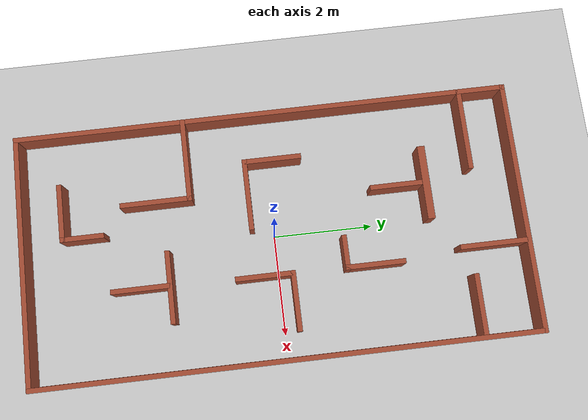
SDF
<sdf version="1.7">
 <world name="default">
  <light name="sun" type="directional">
   <pose>0 0 10 0 -0 0</pose>
   <diffuse>0.8 0.8 0.8 1</diffuse>
   <specular>0.2 0.2 0.2 1</specular>
   <attenuation>
    <range>1000</range>
    <constant>0.9</constant>
    <linear>0.01</linear>
    <quadratic>0.001</quadratic>
   </attenuation>
   <direction>-0.5 0.1 -0.9</direction>
   <spot><inner_angle>0</inner_angle><outer_angle>0</outer_angle><falloff>0</falloff></spot>
  </light>
  <model name="ground_plane">
   <static>1</static>
   <link name="link">
    <collision name="collision">
     <geometry><plane><normal>0 0 1</normal><size>100 100</size></plane></geometry>
     <surface>
      <contact><collide_bitmask>65535</collide_bitmask></contact>
      <friction><ode><mu>100</mu><mu2>50</mu2></ode></friction>
     </surface>
    </collision>
    <visual name="visual">
     <cast_shadows>0</cast_shadows>
     <geometry><plane><normal>0 0 1</normal><size>100 100</size></plane></geometry>
     <material>
      <script><uri>file://media/materials/scripts/gazebo.material</uri><name>Gazebo/Grey</name></script>
     </material>
    </visual>
   </link>
  </model>
  <gravity>0 0 -9.8</gravity>
  <magnetic_field>6e-06 2.3e-05 -4.2e-05</magnetic_field>
  <atmosphere type="adiabatic"/>
  <physics type="ode">
   <max_step_size>0.001</max_step_size>
   <real_time_factor>1</real_time_factor>
   <real_time_update_rate>1000</real_time_update_rate>
  </physics>
  <scene><ambient>0.4 0.4 0.4 1</ambient><background>0.7 0.7 0.7 1</background><shadows>1</shadows></scene>
  <spherical_coordinates>
   <surface_model>EARTH_WGS84</surface_model>
   <latitude_deg>0</latitude_deg>
   <longitude_deg>0</longitude_deg>
   <elevation>0</elevation>
   <heading_deg>0</heading_deg>
  </spherical_coordinates>
  <model name="tb3_multi_map_2">
   <link name="Wall_0">
    <collision name="Wall_0_Collision">
     <geometry><box><size>10.1 0.1 0.5</size></box></geometry>
     <pose>0 0 0.25 0 -0 0</pose>
    </collision>
    <visual name="Wall_0_Visual">
     <pose>0 0 0.25 0 -0 0</pose>
     <geometry><box><size>10.1 0.1 0.5</size></box></geometry>
     <material>
      <script><uri>file://media/materials/scripts/gazebo.material</uri><name>Gazebo/Bricks</name></script>
      <ambient>1 1 1 1</ambient>
     </material>
     <meta><layer>0</layer></meta>
    </visual>
    <pose>-2.49953 0 0 0 -0 -1.5708</pose>
   </link>
   <link name="Wall_1">
    <collision name="Wall_1_Collision">
     <geometry><box><size>5.1 0.1 0.5</size></box></geometry>
     <pose>0 0 0.25 0 -0 0</pose>
    </collision>
    <visual name="Wall_1_Visual">
     <pose>0 0 0.25 0 -0 0</pose>
     <geometry><box><size>5.1 0.1 0.5</size></box></geometry>
     <material>
      <script><uri>file://media/materials/scripts/gazebo.material</uri><name>Gazebo/Bricks</name></script>
      <ambient>1 1 1 1</ambient>
     </material>
     <meta><layer>0</layer></meta>
    </visual>
    <pose>0.000474 -5 0 0 -0 0</pose>
   </link>
   <link name="Wall_11">
    <collision name="Wall_11_Collision">
     <geometry><box><size>1.43 0.1 0.5</size></box></geometry>
     <pose>0 0 0.25 0 -0 0</pose>
    </collision>
    <visual name="Wall_11_Visual">
     <pose>0 0 0.25 0 -0 0</pose>
     <geometry><box><size>1.43 0.1 0.5</size></box></geometry>
     <material>
      <script><uri>file://media/materials/scripts/gazebo.material</uri><name>Gazebo/Bricks</name></script>
      <ambient>1 1 1 1</ambient>
     </material>
     <meta><layer>0</layer></meta>
    </visual>
    <pose>0.700474 4.335 0 0 -0 -1.5708</pose>
   </link>
   <link name="Wall_13">
    <collision name="Wall_13_Collision">
     <geometry><box><size>1.3 0.1 0.5</size></box></geometry>
     <pose>0 0 0.25 0 -0 0</pose>
    </collision>
    <visual name="Wall_13_Visual">
     <pose>0 0 0.25 0 -0 0</pose>
     <geometry><box><size>1.3 0.1 0.5</size></box></geometry>
     <material>
      <script><uri>file://media/materials/scripts/gazebo.material</uri><name>Gazebo/Bricks</name></script>
      <ambient>1 1 1 1</ambient>
     </material>
     <meta><layer>0</layer></meta>
    </visual>
    <pose>1.90047 3.848 0 0 -0 0</pose>
   </link>
   <link name="Wall_15">
    <collision name="Wall_15_Collision">
     <geometry><box><size>1.19995 0.1 0.5</size></box></geometry>
     <pose>0 0 0.25 0 -0 0</pose>
    </collision>
    <visual name="Wall_15_Visual">
     <pose>0 0 0.25 0 -0 0</pose>
     <geometry><box><size>1.19995 0.1 0.5</size></box></geometry>
     <material>
      <script><uri>file://media/materials/scripts/gazebo.material</uri><name>Gazebo/Bricks</name></script>
      <ambient>1 1 1 1</ambient>
     </material>
     <meta><layer>0</layer></meta>
    </visual>
    <pose>0.842474 1.916 0 0 -0 -1.5708</pose>
   </link>
   <link name="Wall_16">
    <collision name="Wall_16_Collision">
     <geometry><box><size>0.700041 0.1 0.5</size></box></geometry>
     <pose>0 0 0.25 0 -0 0</pose>
    </collision>
    <visual name="Wall_16_Visual">
     <pose>0 0 0.25 0 -0 0</pose>
     <geometry><box><size>0.700041 0.1 0.5</size></box></geometry>
     <material>
      <script><uri>file://media/materials/scripts/gazebo.material</uri><name>Gazebo/Bricks</name></script>
      <ambient>1 1 1 1</ambient>
     </material>
     <meta><layer>0</layer></meta>
    </visual>
    <pose>0.542474 1.366 0 0 -0 3.14159</pose>
   </link>
   <link name="Wall_18">
    <collision name="Wall_18_Collision">
     <geometry><box><size>1.20043 0.1 0.5</size></box></geometry>
     <pose>0 0 0.25 0 -0 0</pose>
    </collision>
    <visual name="Wall_18_Visual">
     <pose>0 0 0.25 0 -0 0</pose>
     <geometry><box><size>1.20043 0.1 0.5</size></box></geometry>
     <material>
      <script><uri>file://media/materials/scripts/gazebo.material</uri><name>Gazebo/Bricks</name></script>
      <ambient>1 1 1 1</ambient>
     </material>
     <meta><layer>0</layer></meta>
    </visual>
    <pose>-1.51853 0.115 0 0 -0 -1.5708</pose>
   </link>
   <link name="Wall_19">
    <collision name="Wall_19_Collision">
     <geometry><box><size>1.4498 0.1 0.5</size></box></geometry>
     <pose>0 0 0.25 0 -0 0</pose>
    </collision>
    <visual name="Wall_19_Visual">
     <pose>0 0 0.25 0 -0 0</pose>
     <geometry><box><size>1.4498 0.1 0.5</size></box></geometry>
     <material>
      <script><uri>file://media/materials/scripts/gazebo.material</uri><name>Gazebo/Bricks</name></script>
      <ambient>1 1 1 1</ambient>
     </material>
     <meta><layer>0</layer></meta>
    </visual>
    <pose>-0.843526 -0.435 0 0 -0 0</pose>
   </link>
   <link name="Wall_2">
    <collision name="Wall_2_Collision">
     <geometry><box><size>10.1 0.1 0.5</size></box></geometry>
     <pose>0 0 0.25 0 -0 0</pose>
    </collision>
    <visual name="Wall_2_Visual">
     <pose>0 0 0.25 0 -0 0</pose>
     <geometry><box><size>10.1 0.1 0.5</size></box></geometry>
     <material>
      <script><uri>file://media/materials/scripts/gazebo.material</uri><name>Gazebo/Bricks</name></script>
      <ambient>1 1 1 1</ambient>
     </material>
     <meta><layer>0</layer></meta>
    </visual>
    <pose>2.50047 0 0 0 -0 1.5708</pose>
   </link>
   <link name="Wall_25">
    <collision name="Wall_25_Collision">
     <geometry><box><size>1.19966 0.1 0.5</size></box></geometry>
     <pose>0 0 0.25 0 -0 0</pose>
    </collision>
    <visual name="Wall_25_Visual">
     <pose>0 0 0.25 0 -0 0</pose>
     <geometry><box><size>1.19966 0.1 0.5</size></box></geometry>
     <material>
      <script><uri>file://media/materials/scripts/gazebo.material</uri><name>Gazebo/Bricks</name></script>
      <ambient>1 1 1 1</ambient>
     </material>
     <meta><layer>0</layer></meta>
    </visual>
    <pose>1.37647 0.28 0 0 -0 3.14159</pose>
   </link>
   <link name="Wall_26">
    <collision name="Wall_26_Collision">
     <geometry><box><size>1.20021 0.1 0.5</size></box></geometry>
     <pose>0 0 0.25 0 -0 0</pose>
    </collision>
    <visual name="Wall_26_Visual">
     <pose>0 0 0.25 0 -0 0</pose>
     <geometry><box><size>1.20021 0.1 0.5</size></box></geometry>
     <material>
      <script><uri>file://media/materials/scripts/gazebo.material</uri><name>Gazebo/Bricks</name></script>
      <ambient>1 1 1 1</ambient>
     </material>
     <meta><layer>0</layer></meta>
    </visual>
    <pose>0.826474 -0.27 0 0 -0 -1.5708</pose>
   </link>
   <link name="Wall_3">
    <collision name="Wall_3_Collision">
     <geometry><box><size>5.1 0.1 0.5</size></box></geometry>
     <pose>0 0 0.25 0 -0 0</pose>
    </collision>
    <visual name="Wall_3_Visual">
     <pose>0 0 0.25 0 -0 0</pose>
     <geometry><box><size>5.1 0.1 0.5</size></box></geometry>
     <material>
      <script><uri>file://media/materials/scripts/gazebo.material</uri><name>Gazebo/Bricks</name></script>
      <ambient>1 1 1 1</ambient>
     </material>
     <meta><layer>0</layer></meta>
    </visual>
    <pose>0.000474 5 0 0 -0 3.14159</pose>
   </link>
   <link name="Wall_34">
    <collision name="Wall_34_Collision">
     <geometry><box><size>1.6999 0.1 0.5</size></box></geometry>
     <pose>0 0 0.25 0 -0 0</pose>
    </collision>
    <visual name="Wall_34_Visual">
     <pose>0 0 0.25 0 -0 0</pose>
     <geometry><box><size>1.6999 0.1 0.5</size></box></geometry>
     <material>
      <script><uri>file://media/materials/scripts/gazebo.material</uri><name>Gazebo/Bricks</name></script>
      <ambient>1 1 1 1</ambient>
     </material>
     <meta><layer>0</layer></meta>
    </visual>
    <pose>-1.70053 -1.604 0 0 -0 0</pose>
   </link>
   <link name="Wall_35">
    <collision name="Wall_35_Collision">
     <geometry><box><size>1.44962 0.1 0.5</size></box></geometry>
     <pose>0 0 0.25 0 -0 0</pose>
    </collision>
    <visual name="Wall_35_Visual">
     <pose>0 0 0.25 0 -0 0</pose>
     <geometry><box><size>1.44962 0.1 0.5</size></box></geometry>
     <material>
      <script><uri>file://media/materials/scripts/gazebo.material</uri><name>Gazebo/Bricks</name></script>
      <ambient>1 1 1 1</ambient>
     </material>
     <meta><layer>0</layer></meta>
    </visual>
    <pose>-0.900526 -2.279 0 0 -0 -1.5708</pose>
   </link>
   <link name="Wall_37">
    <collision name="Wall_37_Collision">
     <geometry><box><size>1.44989 0.1 0.5</size></box></geometry>
     <pose>0 0 0.25 0 -0 0</pose>
    </collision>
    <visual name="Wall_37_Visual">
     <pose>0 0 0.25 0 -0 0</pose>
     <geometry><box><size>1.44989 0.1 0.5</size></box></geometry>
     <material>
      <script><uri>file://media/materials/scripts/gazebo.material</uri><name>Gazebo/Bricks</name></script>
      <ambient>1 1 1 1</ambient>
     </material>
     <meta><layer>0</layer></meta>
    </visual>
    <pose>0.829474 -2.147 0 0 -0 0</pose>
   </link>
   <link name="Wall_39">
    <collision name="Wall_39_Collision">
     <geometry><box><size>1.1998 0.1 0.5</size></box></geometry>
     <pose>0 0 0.25 0 -0 0</pose>
    </collision>
    <visual name="Wall_39_Visual">
     <pose>0 0 0.25 0 -0 0</pose>
     <geometry><box><size>1.1998 0.1 0.5</size></box></geometry>
     <material>
      <script><uri>file://media/materials/scripts/gazebo.material</uri><name>Gazebo/Bricks</name></script>
      <ambient>1 1 1 1</ambient>
     </material>
     <meta><layer>0</layer></meta>
    </visual>
    <pose>0.798474 -2.717 0 0 -0 -1.5708</pose>
   </link>
   <link name="Wall_41">
    <collision name="Wall_41_Collision">
     <geometry><box><size>1.177 0.1 0.5</size></box></geometry>
     <pose>0 0 0.25 0 -0 0</pose>
    </collision>
    <visual name="Wall_41_Visual">
     <pose>0 0 0.25 0 -0 0</pose>
     <geometry><box><size>1.177 0.1 0.5</size></box></geometry>
     <material>
      <script><uri>file://media/materials/scripts/gazebo.material</uri><name>Gazebo/Bricks</name></script>
      <ambient>1 1 1 1</ambient>
     </material>
     <meta><layer>0</layer></meta>
    </visual>
    <pose>-0.883026 -4.186 0 0 -0 0</pose>
   </link>
   <link name="Wall_42">
    <collision name="Wall_42_Collision">
     <geometry><box><size>0.88 0.1 0.5</size></box></geometry>
     <pose>0 0 0.25 0 -0 0</pose>
    </collision>
    <visual name="Wall_42_Visual">
     <pose>0 0 0.25 0 -0 0</pose>
     <geometry><box><size>0.88 0.1 0.5</size></box></geometry>
     <material>
      <script><uri>file://media/materials/scripts/gazebo.material</uri><name>Gazebo/Bricks</name></script>
      <ambient>1 1 1 1</ambient>
     </material>
     <meta><layer>0</layer></meta>
    </visual>
    <pose>-0.344526 -3.796 0 0 -0 1.5708</pose>
   </link>
   <link name="Wall_5">
    <collision name="Wall_5_Collision">
     <geometry><box><size>1.68387 0.1 0.5</size></box></geometry>
     <pose>0 0 0.25 0 -0 0</pose>
    </collision>
    <visual name="Wall_5_Visual">
     <pose>0 0 0.25 0 -0 0</pose>
     <geometry><box><size>1.68387 0.1 0.5</size></box></geometry>
     <material>
      <script><uri>file://media/materials/scripts/gazebo.material</uri><name>Gazebo/Bricks</name></script>
      <ambient>1 1 1 1</ambient>
     </material>
     <meta><layer>0</layer></meta>
    </visual>
    <pose>-1.70752 4.093 0 0 -0 0</pose>
   </link>
   <link name="Wall_7">
    <collision name="Wall_7_Collision">
     <geometry><box><size>1.5 0.15 0.5</size></box></geometry>
     <pose>0 0 0.25 0 -0 0</pose>
    </collision>
    <visual name="Wall_7_Visual">
     <pose>0 0 0.25 0 -0 0</pose>
     <geometry><box><size>1.5 0.15 0.5</size></box></geometry>
     <material>
      <script><uri>file://media/materials/scripts/gazebo.material</uri><name>Gazebo/Bricks</name></script>
      <ambient>1 1 1 1</ambient>
     </material>
     <meta><layer>0</layer></meta>
    </visual>
    <pose>-0.686526 3.148 0 0 -0 0</pose>
   </link>
   <link name="Wall_9">
    <collision name="Wall_9_Collision">
     <geometry><box><size>1.20035 0.1 0.5</size></box></geometry>
     <pose>0 0 0.25 0 -0 0</pose>
    </collision>
    <visual name="Wall_9_Visual">
     <pose>0 0 0.25 0 -0 0</pose>
     <geometry><box><size>1.20035 0.1 0.5</size></box></geometry>
     <material>
      <script><uri>file://media/materials/scripts/gazebo.material</uri><name>Gazebo/Bricks</name></script>
      <ambient>1 1 1 1</ambient>
     </material>
     <meta><layer>0</layer></meta>
    </visual>
    <pose>-0.696526 2.616 0 0 -0 -1.5708</pose>
   </link>
   <static>1</static>
  </model>
 </world>
</sdf>
